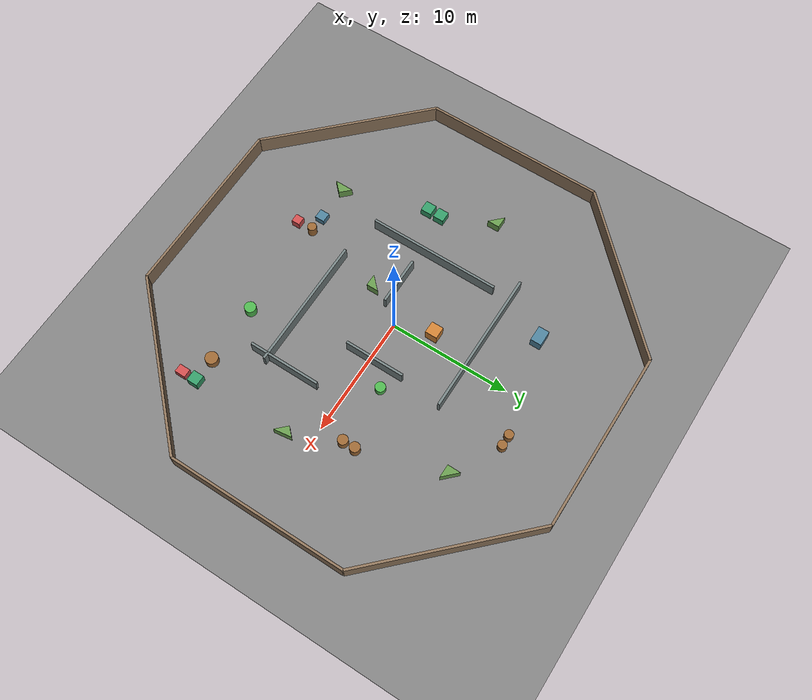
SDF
<?xml version="1.0"?>
<sdf version='1.9'>
  <world name='octagon_world'>
    <physics name='1ms' type='ignored'>
      <max_step_size>0.001</max_step_size>
      <real_time_factor>1</real_time_factor>
      <real_time_update_rate>1000</real_time_update_rate>
    </physics>
    <plugin name='ignition::gazebo::systems::Physics' filename='ignition-gazebo-physics-system' />
    <plugin name='ignition::gazebo::systems::UserCommands' filename='ignition-gazebo-user-commands-system' />
    <plugin name='ignition::gazebo::systems::SceneBroadcaster' filename='ignition-gazebo-scene-broadcaster-system' />

    <gravity>0 0 -9.8</gravity>
    <magnetic_field>6e-06 2.3e-05 -4.2e-05</magnetic_field>
    <atmosphere type='adiabatic' />
    <scene>
      <ambient>0.4 0.4 0.4 1</ambient>
      <background>0.7 0.7 0.7 1</background>
      <shadows>true</shadows>
    </scene>

    <!-- ==================== 地面 (40×40m) ==================== -->
    <model name='ground_plane'>
      <static>true</static>
      <link name='link'>
        <collision name='collision'>
          <geometry>
            <plane>
              <normal>0 0 1</normal>
              <size>40 40</size>
            </plane>
          </geometry>
          <surface>
            <friction><ode /></friction>
            <bounce />
            <contact />
          </surface>
        </collision>
        <visual name='visual'>
          <geometry>
            <plane>
              <normal>0 0 1</normal>
              <size>40 40</size>
            </plane>
          </geometry>
          <material>
            <ambient>0.45 0.45 0.45 1</ambient>
            <diffuse>0.5 0.5 0.5 1</diffuse>
            <specular>0.2 0.2 0.2 1</specular>
          </material>
        </visual>
        <pose>0 0 0 0 -0 0</pose>
        <inertial>
          <pose>0 0 0 0 -0 0</pose>
          <mass>1</mass>
          <inertia>
            <ixx>1</ixx><ixy>0</ixy><ixz>0</ixz>
            <iyy>1</iyy><iyz>0</iyz>
            <izz>1</izz>
          </inertia>
        </inertial>
        <enable_wind>false</enable_wind>
      </link>
      <pose>0 0 0 0 -0 0</pose>
      <self_collide>false</self_collide>
    </model>

    <light name='sun' type='directional'>
      <pose>0 0 10 0 -0 0</pose>
      <cast_shadows>true</cast_shadows>
      <intensity>1</intensity>
      <direction>-0.5 0.1 -0.9</direction>
      <diffuse>0.8 0.8 0.8 1</diffuse>
      <specular>0.2 0.2 0.2 1</specular>
      <attenuation>
        <range>1000</range>
        <linear>0.01</linear>
        <constant>0.9</constant>
        <quadratic>0.001</quadratic>
      </attenuation>
      <spot>
        <inner_angle>0</inner_angle>
        <outer_angle>0</outer_angle>
        <falloff>0</falloff>
      </spot>
    </light>

    <!-- ============================================================
         正八边形外墙（不变，墙厚 0.2m，墙高 1.6m，Z 中心 = 0.8）
         ============================================================ -->
    <model name='octagon_wall'>
      <link name='wall_top'>
        <pose>0 18 0.8 0 0 0</pose>
        <collision name='c'>
          <geometry><box><size>14.91 0.2 1.6</size></box></geometry>
          <surface><friction><ode /></friction><bounce /><contact /></surface>
        </collision>
        <visual name='v'>
          <geometry><box><size>14.91 0.2 1.6</size></box></geometry>
          <material><ambient>0.55 0.45 0.35 1</ambient><diffuse>0.55 0.45 0.35 1</diffuse></material>
        </visual>
      </link>
      <link name='wall_ne'>
        <pose>12.73 12.73 0.8 0 0 -0.7854</pose>
        <collision name='c'>
          <geometry><box><size>14.91 0.2 1.6</size></box></geometry>
          <surface><friction><ode /></friction><bounce /><contact /></surface>
        </collision>
        <visual name='v'>
          <geometry><box><size>14.91 0.2 1.6</size></box></geometry>
          <material><ambient>0.55 0.45 0.35 1</ambient><diffuse>0.55 0.45 0.35 1</diffuse></material>
        </visual>
      </link>
      <link name='wall_right'>
        <pose>18 0 0.8 0 0 1.5708</pose>
        <collision name='c'>
          <geometry><box><size>14.91 0.2 1.6</size></box></geometry>
          <surface><friction><ode /></friction><bounce /><contact /></surface>
        </collision>
        <visual name='v'>
          <geometry><box><size>14.91 0.2 1.6</size></box></geometry>
          <material><ambient>0.55 0.45 0.35 1</ambient><diffuse>0.55 0.45 0.35 1</diffuse></material>
        </visual>
      </link>
      <link name='wall_se'>
        <pose>12.73 -12.73 0.8 0 0 0.7854</pose>
        <collision name='c'>
          <geometry><box><size>14.91 0.2 1.6</size></box></geometry>
          <surface><friction><ode /></friction><bounce /><contact /></surface>
        </collision>
        <visual name='v'>
          <geometry><box><size>14.91 0.2 1.6</size></box></geometry>
          <material><ambient>0.55 0.45 0.35 1</ambient><diffuse>0.55 0.45 0.35 1</diffuse></material>
        </visual>
      </link>
      <link name='wall_bottom'>
        <pose>0 -18 0.8 0 0 0</pose>
        <collision name='c'>
          <geometry><box><size>14.91 0.2 1.6</size></box></geometry>
          <surface><friction><ode /></friction><bounce /><contact /></surface>
        </collision>
        <visual name='v'>
          <geometry><box><size>14.91 0.2 1.6</size></box></geometry>
          <material><ambient>0.55 0.45 0.35 1</ambient><diffuse>0.55 0.45 0.35 1</diffuse></material>
        </visual>
      </link>
      <link name='wall_sw'>
        <pose>-12.73 -12.73 0.8 0 0 -0.7854</pose>
        <collision name='c'>
          <geometry><box><size>14.91 0.2 1.6</size></box></geometry>
          <surface><friction><ode /></friction><bounce /><contact /></surface>
        </collision>
        <visual name='v'>
          <geometry><box><size>14.91 0.2 1.6</size></box></geometry>
          <material><ambient>0.55 0.45 0.35 1</ambient><diffuse>0.55 0.45 0.35 1</diffuse></material>
        </visual>
      </link>
      <link name='wall_left'>
        <pose>-18 0 0.8 0 0 1.5708</pose>
        <collision name='c'>
          <geometry><box><size>14.91 0.2 1.6</size></box></geometry>
          <surface><friction><ode /></friction><bounce /><contact /></surface>
        </collision>
        <visual name='v'>
          <geometry><box><size>14.91 0.2 1.6</size></box></geometry>
          <material><ambient>0.55 0.45 0.35 1</ambient><diffuse>0.55 0.45 0.35 1</diffuse></material>
        </visual>
      </link>
      <link name='wall_nw'>
        <pose>-12.73 12.73 0.8 0 0 0.7854</pose>
        <collision name='c'>
          <geometry><box><size>14.91 0.2 1.6</size></box></geometry>
          <surface><friction><ode /></friction><bounce /><contact /></surface>
        </collision>
        <visual name='v'>
          <geometry><box><size>14.91 0.2 1.6</size></box></geometry>
          <material><ambient>0.55 0.45 0.35 1</ambient><diffuse>0.55 0.45 0.35 1</diffuse></material>
        </visual>
      </link>
      <static>true</static>
      <self_collide>false</self_collide>
    </model>

    <model name='inner_walls'>
      <link name='wall_i1'>
        <pose>-2 6.5 0.6 0 0 0</pose>
        <collision name='c'>
          <geometry><box><size>12 0.2 1.2</size></box></geometry>
          <surface><friction><ode /></friction><bounce /><contact /></surface>
        </collision>
        <visual name='v'>
          <geometry><box><size>12 0.2 1.2</size></box></geometry>
          <material><ambient>0.45 0.5 0.5 1</ambient><diffuse>0.45 0.5 0.5 1</diffuse></material>
        </visual>
      </link>
      <link name='wall_i2'>
        <pose>-6.5 -0.5 0.6 0 0 1.5708</pose>
        <collision name='c'>
          <geometry><box><size>11 0.2 1.2</size></box></geometry>
          <surface><friction><ode /></friction><bounce /><contact /></surface>
        </collision>
        <visual name='v'>
          <geometry><box><size>11 0.2 1.2</size></box></geometry>
          <material><ambient>0.45 0.5 0.5 1</ambient><diffuse>0.45 0.5 0.5 1</diffuse></material>
        </visual>
      </link>
      <link name='wall_i3'>
        <pose>2.5 -6.5 0.6 0 0 0</pose>
        <collision name='c'>
          <geometry><box><size>11 0.2 1.2</size></box></geometry>
          <surface><friction><ode /></friction><bounce /><contact /></surface>
        </collision>
        <visual name='v'>
          <geometry><box><size>11 0.2 1.2</size></box></geometry>
          <material><ambient>0.45 0.5 0.5 1</ambient><diffuse>0.45 0.5 0.5 1</diffuse></material>
        </visual>
      </link>
      <link name='wall_i4'>
        <pose>7.5 -5 0.6 0 0 1.5708</pose>
        <collision name='c'>
          <geometry><box><size>6 0.2 1.2</size></box></geometry>
          <surface><friction><ode /></friction><bounce /><contact /></surface>
        </collision>
        <visual name='v'>
          <geometry><box><size>6 0.2 1.2</size></box></geometry>
          <material><ambient>0.45 0.5 0.5 1</ambient><diffuse>0.45 0.5 0.5 1</diffuse></material>
        </visual>
      </link>
      <link name='wall_i5'>
        <pose>-3 -1.5 0.6 0 0 0</pose>
        <collision name='c'>
          <geometry><box><size>4 0.2 1.2</size></box></geometry>
          <surface><friction><ode /></friction><bounce /><contact /></surface>
        </collision>
        <visual name='v'>
          <geometry><box><size>4 0.2 1.2</size></box></geometry>
          <material><ambient>0.45 0.5 0.5 1</ambient><diffuse>0.45 0.5 0.5 1</diffuse></material>
        </visual>
      </link>
      <link name='wall_i6'>
        <pose>3.5 0.5 0.6 0 0 1.5708</pose>
        <collision name='c'>
          <geometry><box><size>5 0.2 1.2</size></box></geometry>
          <surface><friction><ode /></friction><bounce /><contact /></surface>
        </collision>
        <visual name='v'>
          <geometry><box><size>5 0.2 1.2</size></box></geometry>
          <material><ambient>0.45 0.5 0.5 1</ambient><diffuse>0.45 0.5 0.5 1</diffuse></material>
        </visual>
      </link>
      <static>true</static>
      <self_collide>false</self_collide>
    </model>

    <!-- ============================================================
         特征物体（v2：所有 xy 尺寸 +25cm，高度保持不变）
         对组内的物体，间距同步拉大以避免重叠
         ============================================================ -->

    <!-- ===== 北部大房间 (y > 6.5) ===== -->
    <!-- N1 单个长方体 1.0×0.6 → 1.3×0.9 -->
    <model name='n1_box'>
      <static>true</static>
      <pose>-5 10 0.45 0 0 0</pose>
      <link name='l'>
        <collision name='c'><geometry><box><size>1.3 0.9 0.9</size></box></geometry></collision>
        <visual name='v'>
          <geometry><box><size>1.3 0.9 0.9</size></box></geometry>
          <material><ambient>0.3 0.5 0.6 1</ambient><diffuse>0.3 0.5 0.6 1</diffuse></material>
        </visual>
      </link>
    </model>
    <!-- N2 两个圆柱成对 r=0.25→0.37，间距 0.7→0.95 -->
    <model name='n2_cyl_a'>
      <static>true</static>
      <pose>3 12 0.35 0 0 0</pose>
      <link name='l'>
        <collision name='c'><geometry><cylinder><radius>0.37</radius><length>0.7</length></cylinder></geometry></collision>
        <visual name='v'>
          <geometry><cylinder><radius>0.37</radius><length>0.7</length></cylinder></geometry>
          <material><ambient>0.6 0.4 0.2 1</ambient><diffuse>0.6 0.4 0.2 1</diffuse></material>
        </visual>
      </link>
    </model>
    <model name='n2_cyl_b'>
      <static>true</static>
      <pose>3.95 12 0.35 0 0 0</pose>
      <link name='l'>
        <collision name='c'><geometry><cylinder><radius>0.37</radius><length>0.7</length></cylinder></geometry></collision>
        <visual name='v'>
          <geometry><cylinder><radius>0.37</radius><length>0.7</length></cylinder></geometry>
          <material><ambient>0.6 0.4 0.2 1</ambient><diffuse>0.6 0.4 0.2 1</diffuse></material>
        </visual>
      </link>
    </model>
    <!-- N3 单个三棱柱 scale 0.8→1.1 -->
    <model name='n3_tri'>
      <static>true</static>
      <pose>8 10 0.4 0 0 0</pose>
      <link name='l'>
        <collision name='c'>
          <geometry>
            <mesh>
              <uri>model://triangular_prism/meshes/triangular_prism.dae</uri>
              <scale>1.1 1.1 0.8</scale>
            </mesh>
          </geometry>
        </collision>
        <visual name='v'>
          <geometry>
            <mesh>
              <uri>model://triangular_prism/meshes/triangular_prism.dae</uri>
              <scale>1.1 1.1 0.8</scale>
            </mesh>
          </geometry>
          <material><ambient>0.4 0.6 0.3 1</ambient><diffuse>0.4 0.6 0.3 1</diffuse></material>
        </visual>
      </link>
    </model>

    <!-- ===== 中央区域 ===== -->
    <!-- C1 单个圆柱 r=0.3→0.42，位置稍微东移避免和 wall_i6 太近 -->
    <model name='c1_cyl'>
      <static>true</static>
      <pose>5 2 0.3 0 0 0</pose>
      <link name='l'>
        <collision name='c'><geometry><cylinder><radius>0.42</radius><length>0.6</length></cylinder></geometry></collision>
        <visual name='v'>
          <geometry><cylinder><radius>0.42</radius><length>0.6</length></cylinder></geometry>
          <material><ambient>0.3 0.7 0.3 1</ambient><diffuse>0.3 0.7 0.3 1</diffuse></material>
        </visual>
      </link>
    </model>
    <!-- C2 单个三棱柱 scale 0.7→1.0 -->
    <model name='c2_tri'>
      <static>true</static>
      <pose>-2 -3 0.4 0 0 1.5708</pose>
      <link name='l'>
        <collision name='c'>
          <geometry>
            <mesh>
              <uri>model://triangular_prism/meshes/triangular_prism.dae</uri>
              <scale>1.0 1.0 0.8</scale>
            </mesh>
          </geometry>
        </collision>
        <visual name='v'>
          <geometry>
            <mesh>
              <uri>model://triangular_prism/meshes/triangular_prism.dae</uri>
              <scale>1.0 1.0 0.8</scale>
            </mesh>
          </geometry>
          <material><ambient>0.4 0.6 0.3 1</ambient><diffuse>0.4 0.6 0.3 1</diffuse></material>
        </visual>
      </link>
    </model>
    <!-- C3 单个正方体 0.7×0.7 → 1.0×1.0 -->
    <model name='c3_cub'>
      <static>true</static>
      <pose>-1 3 0.5 0 0 0</pose>
      <link name='l'>
        <collision name='c'><geometry><box><size>1.0 1.0 1.0</size></box></geometry></collision>
        <visual name='v'>
          <geometry><box><size>1.0 1.0 1.0</size></box></geometry>
          <material><ambient>0.8 0.5 0.2 1</ambient><diffuse>0.8 0.5 0.2 1</diffuse></material>
        </visual>
      </link>
    </model>

    <!-- ===== 东北区域 ===== -->
    <!-- E1 两个圆柱成对 r=0.3→0.42，间距 0.8→1.05 -->
    <model name='e1_cyl_a'>
      <static>true</static>
      <pose>10 2 0.4 0 0 0</pose>
      <link name='l'>
        <collision name='c'><geometry><cylinder><radius>0.42</radius><length>0.8</length></cylinder></geometry></collision>
        <visual name='v'>
          <geometry><cylinder><radius>0.42</radius><length>0.8</length></cylinder></geometry>
          <material><ambient>0.6 0.4 0.2 1</ambient><diffuse>0.6 0.4 0.2 1</diffuse></material>
        </visual>
      </link>
    </model>
    <model name='e1_cyl_b'>
      <static>true</static>
      <pose>10 3.05 0.4 0 0 0</pose>
      <link name='l'>
        <collision name='c'><geometry><cylinder><radius>0.42</radius><length>0.8</length></cylinder></geometry></collision>
        <visual name='v'>
          <geometry><cylinder><radius>0.42</radius><length>0.8</length></cylinder></geometry>
          <material><ambient>0.6 0.4 0.2 1</ambient><diffuse>0.6 0.4 0.2 1</diffuse></material>
        </visual>
      </link>
    </model>
    <!-- E2 单个三棱柱 scale 0.9/0.6 → 1.2/0.9 -->
    <model name='e2_tri'>
      <static>true</static>
      <pose>12 -2 0.4 0 0 -0.7854</pose>
      <link name='l'>
        <collision name='c'>
          <geometry>
            <mesh>
              <uri>model://triangular_prism/meshes/triangular_prism.dae</uri>
              <scale>1.2 0.9 0.8</scale>
            </mesh>
          </geometry>
        </collision>
        <visual name='v'>
          <geometry>
            <mesh>
              <uri>model://triangular_prism/meshes/triangular_prism.dae</uri>
              <scale>1.2 0.9 0.8</scale>
            </mesh>
          </geometry>
          <material><ambient>0.4 0.6 0.3 1</ambient><diffuse>0.4 0.6 0.3 1</diffuse></material>
        </visual>
      </link>
    </model>

    <!-- ===== 西北区域 ===== -->
    <!-- W1 单个三棱柱 scale 0.7→1.0 -->
    <model name='w1_tri'>
      <static>true</static>
      <pose>-12 2 0.4 0 0 3.1416</pose>
      <link name='l'>
        <collision name='c'>
          <geometry>
            <mesh>
              <uri>model://triangular_prism/meshes/triangular_prism.dae</uri>
              <scale>1.0 1.0 0.8</scale>
            </mesh>
          </geometry>
        </collision>
        <visual name='v'>
          <geometry>
            <mesh>
              <uri>model://triangular_prism/meshes/triangular_prism.dae</uri>
              <scale>1.0 1.0 0.8</scale>
            </mesh>
          </geometry>
          <material><ambient>0.4 0.6 0.3 1</ambient><diffuse>0.4 0.6 0.3 1</diffuse></material>
        </visual>
      </link>
    </model>
    <!-- W2 两个长方体成对 0.6→0.9，间距 0.7→1.15 -->
    <model name='w2_box_a'>
      <static>true</static>
      <pose>-10 -2 0.35 0 0 0</pose>
      <link name='l'>
        <collision name='c'><geometry><box><size>0.9 0.9 0.7</size></box></geometry></collision>
        <visual name='v'>
          <geometry><box><size>0.9 0.9 0.7</size></box></geometry>
          <material><ambient>0.2 0.6 0.4 1</ambient><diffuse>0.2 0.6 0.4 1</diffuse></material>
        </visual>
      </link>
    </model>
    <model name='w2_box_b'>
      <static>true</static>
      <pose>-10 -3.15 0.35 0 0 0</pose>
      <link name='l'>
        <collision name='c'><geometry><box><size>0.9 0.9 0.7</size></box></geometry></collision>
        <visual name='v'>
          <geometry><box><size>0.9 0.9 0.7</size></box></geometry>
          <material><ambient>0.2 0.6 0.4 1</ambient><diffuse>0.2 0.6 0.4 1</diffuse></material>
        </visual>
      </link>
    </model>

    <!-- ===== 南部大房间 (y < -6.5) ===== -->
    <!-- S1 三件套：box + cyl + box，全部加大并拉开间距 -->
    <model name='s1_box_a'>
      <static>true</static>
      <pose>-4.8 -10 0.3 0 0 0</pose>
      <link name='l'>
        <collision name='c'><geometry><box><size>0.8 0.8 0.6</size></box></geometry></collision>
        <visual name='v'>
          <geometry><box><size>0.8 0.8 0.6</size></box></geometry>
          <material><ambient>0.3 0.5 0.6 1</ambient><diffuse>0.3 0.5 0.6 1</diffuse></material>
        </visual>
      </link>
    </model>
    <model name='s1_cyl'>
      <static>true</static>
      <pose>-3.4 -10 0.45 0 0 0</pose>
      <link name='l'>
        <collision name='c'><geometry><cylinder><radius>0.37</radius><length>0.9</length></cylinder></geometry></collision>
        <visual name='v'>
          <geometry><cylinder><radius>0.37</radius><length>0.9</length></cylinder></geometry>
          <material><ambient>0.6 0.4 0.2 1</ambient><diffuse>0.6 0.4 0.2 1</diffuse></material>
        </visual>
      </link>
    </model>
    <model name='s1_box_b'>
      <static>true</static>
      <pose>-3.4 -11.4 0.35 0 0 0</pose>
      <link name='l'>
        <collision name='c'><geometry><box><size>0.7 0.7 0.7</size></box></geometry></collision>
        <visual name='v'>
          <geometry><box><size>0.7 0.7 0.7</size></box></geometry>
          <material><ambient>0.8 0.3 0.3 1</ambient><diffuse>0.8 0.3 0.3 1</diffuse></material>
        </visual>
      </link>
    </model>
    <!-- S2 单个圆柱 r=0.35→0.47 -->
    <model name='s2_cyl'>
      <static>true</static>
      <pose>5 -10 0.4 0 0 0</pose>
      <link name='l'>
        <collision name='c'><geometry><cylinder><radius>0.47</radius><length>0.8</length></cylinder></geometry></collision>
        <visual name='v'>
          <geometry><cylinder><radius>0.47</radius><length>0.8</length></cylinder></geometry>
          <material><ambient>0.3 0.7 0.3 1</ambient><diffuse>0.3 0.7 0.3 1</diffuse></material>
        </visual>
      </link>
    </model>
    <!-- S3 单个三棱柱 scale 0.8→1.1 -->
    <model name='s3_tri'>
      <static>true</static>
      <pose>-8 -10 0.4 0 0 2.3562</pose>
      <link name='l'>
        <collision name='c'>
          <geometry>
            <mesh>
              <uri>model://triangular_prism/meshes/triangular_prism.dae</uri>
              <scale>1.1 1.1 0.8</scale>
            </mesh>
          </geometry>
        </collision>
        <visual name='v'>
          <geometry>
            <mesh>
              <uri>model://triangular_prism/meshes/triangular_prism.dae</uri>
              <scale>1.1 1.1 0.8</scale>
            </mesh>
          </geometry>
          <material><ambient>0.4 0.6 0.3 1</ambient><diffuse>0.4 0.6 0.3 1</diffuse></material>
        </visual>
      </link>
    </model>

    <!-- ===== 东南区域 (x>7.5, y<-2) ===== -->
    <!-- SE1 单个圆柱 r=0.4→0.52 -->
    <model name='se1_cyl'>
      <static>true</static>
      <pose>10 -10 0.35 0 0 0</pose>
      <link name='l'>
        <collision name='c'><geometry><cylinder><radius>0.52</radius><length>0.7</length></cylinder></geometry></collision>
        <visual name='v'>
          <geometry><cylinder><radius>0.52</radius><length>0.7</length></cylinder></geometry>
          <material><ambient>0.6 0.4 0.2 1</ambient><diffuse>0.6 0.4 0.2 1</diffuse></material>
        </visual>
      </link>
    </model>
    <!-- SE2 两个长方体成对 0.6/0.4→0.9/0.7，间距 0.7→1.15 -->
    <model name='se2_box_a'>
      <static>true</static>
      <pose>12 -10 0.4 0 0 0</pose>
      <link name='l'>
        <collision name='c'><geometry><box><size>0.9 0.9 0.8</size></box></geometry></collision>
        <visual name='v'>
          <geometry><box><size>0.9 0.9 0.8</size></box></geometry>
          <material><ambient>0.2 0.6 0.4 1</ambient><diffuse>0.2 0.6 0.4 1</diffuse></material>
        </visual>
      </link>
    </model>
    <model name='se2_box_b'>
      <static>true</static>
      <pose>12 -11.25 0.3 0 0 0</pose>
      <link name='l'>
        <collision name='c'><geometry><box><size>0.7 0.9 0.6</size></box></geometry></collision>
        <visual name='v'>
          <geometry><box><size>0.7 0.9 0.6</size></box></geometry>
          <material><ambient>0.8 0.3 0.3 1</ambient><diffuse>0.8 0.3 0.3 1</diffuse></material>
        </visual>
      </link>
    </model>
  </world>
</sdf>
